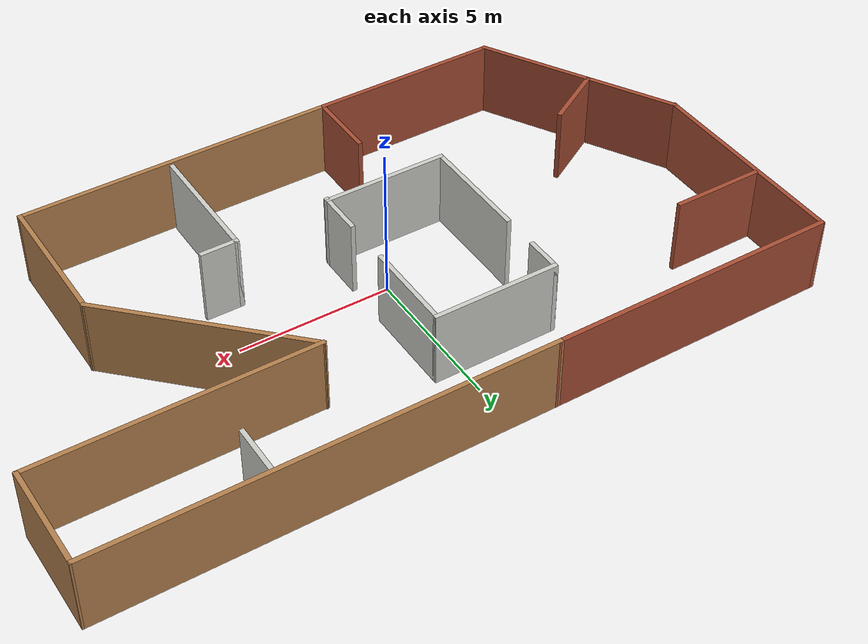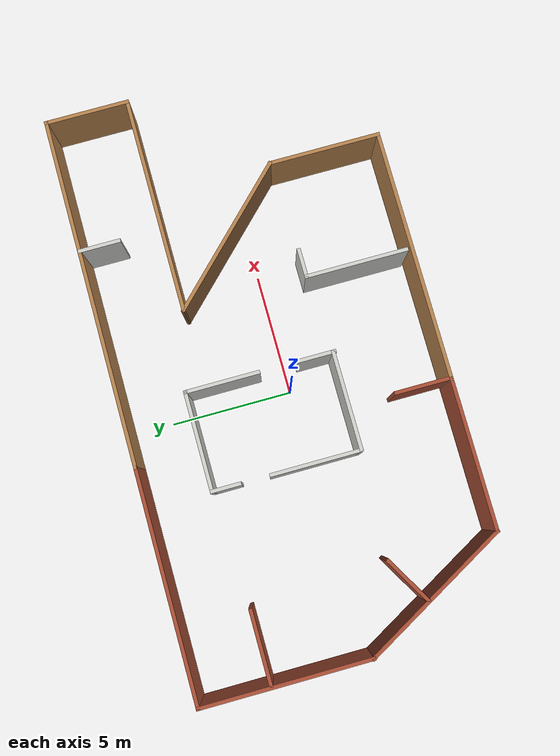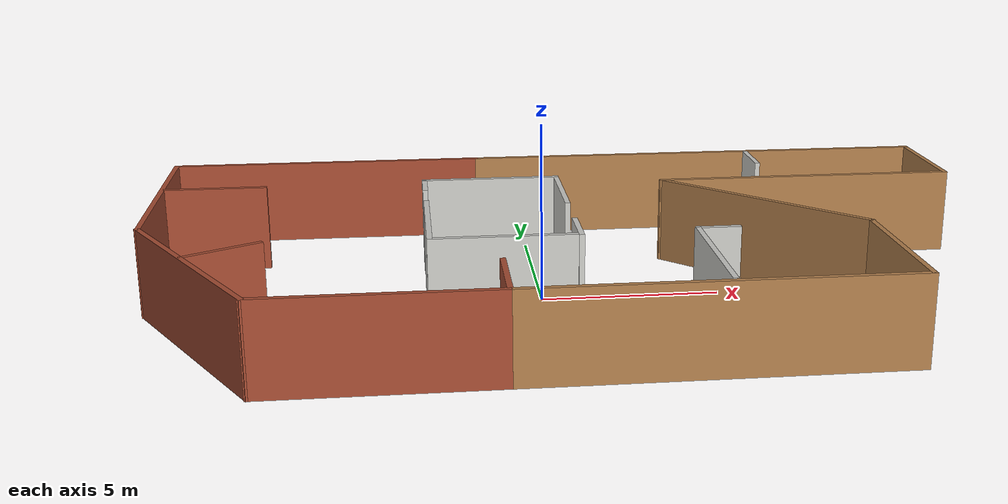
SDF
<?xml version='1.0'?>
<sdf version='1.6'>
  <model name='new_building'>
    <pose frame=''>1.00211 0.267219 0 0 -0 0</pose>
    <link name='Wall_11'>
      <collision name='Wall_11_Collision'>
        <geometry>
          <box>
            <size>3.75 0.15 2.5</size>
          </box>
        </geometry>
        <pose frame=''>0 0 1.25 0 -0 0</pose>
      </collision>
      <visual name='Wall_11_Visual'>
        <pose frame=''>0 0 1.25 0 -0 0</pose>
        <geometry>
          <box>
            <size>3.75 0.15 2.5</size>
          </box>
        </geometry>
        <material>
          <script>
            <uri>file://media/materials/scripts/gazebo.material</uri>
            <name>Gazebo/CeilingTiled</name>
          </script>
          <ambient>0.996078 0.47451 0.0196078 1</ambient>
        </material>
        <meta>
          <layer>0</layer>
        </meta>
      </visual>
      <pose frame=''>-4.14163 -0.403047 0 0 -0 1.5708</pose>
    </link>
    <link name='Wall_14'>
      <collision name='Wall_14_Collision'>
        <geometry>
          <box>
            <size>3.5 0.15 2.5</size>
          </box>
        </geometry>
        <pose frame=''>0 0 1.25 0 -0 0</pose>
      </collision>
      <visual name='Wall_14_Visual'>
        <pose frame=''>0 0 1.25 0 -0 0</pose>
        <geometry>
          <box>
            <size>3.5 0.15 2.5</size>
          </box>
        </geometry>
        <material>
          <script>
            <uri>file://media/materials/scripts/gazebo.material</uri>
            <name>Gazebo/Wood</name>
          </script>
          <ambient>0 0 1 1</ambient>
        </material>
        <meta>
          <layer>0</layer>
        </meta>
      </visual>
      <pose frame=''>11.8417 4.67007 0 0 -0 -1.5708</pose>
    </link>
    <link name='Wall_15'>
      <collision name='Wall_15_Collision'>
        <geometry>
          <box>
            <size>9 0.15 2.5</size>
          </box>
        </geometry>
        <pose frame=''>0 0 1.25 0 -0 0</pose>
      </collision>
      <visual name='Wall_15_Visual'>
        <pose frame=''>0 0 1.25 0 -0 0</pose>
        <geometry>
          <box>
            <size>9 0.15 2.5</size>
          </box>
        </geometry>
        <material>
          <script>
            <uri>file://media/materials/scripts/gazebo.material</uri>
            <name>Gazebo/Wood</name>
          </script>
          <ambient>0 0 1 1</ambient>
        </material>
        <meta>
          <layer>0</layer>
        </meta>
      </visual>
      <pose frame=''>7.41668 2.99507 0 0 -0 3.14159</pose>
    </link>
    <link name='Wall_16'>
      <collision name='Wall_16_Collision'>
        <geometry>
          <box>
            <size>7 0.15 2.5</size>
          </box>
        </geometry>
        <pose frame=''>0 0 1.25 0 -0 0</pose>
      </collision>
      <visual name='Wall_16_Visual'>
        <pose frame=''>0 0 1.25 0 -0 0</pose>
        <geometry>
          <box>
            <size>7 0.15 2.5</size>
          </box>
        </geometry>
        <material>
          <script>
            <uri>file://media/materials/scripts/gazebo.material</uri>
            <name>Gazebo/Wood</name>
          </script>
          <ambient>0.435294 0.796078 0.67451 1</ambient>
        </material>
        <meta>
          <layer>0</layer>
        </meta>
      </visual>
      <pose frame=''>5.41352 0.573235 0 0 -0 -0.785398</pose>
    </link>
    <link name='Wall_17'>
      <collision name='Wall_17_Collision'>
        <geometry>
          <box>
            <size>4.64151 0.15 2.5</size>
          </box>
        </geometry>
        <pose frame=''>0 0 1.25 0 -0 0</pose>
      </collision>
      <visual name='Wall_17_Visual'>
        <pose frame=''>0 0 1.25 0 -0 0</pose>
        <geometry>
          <box>
            <size>4.64151 0.15 2.5</size>
          </box>
        </geometry>
        <material>
          <script>
            <uri>file://media/materials/scripts/gazebo.material</uri>
            <name>Gazebo/Wood</name>
          </script>
          <ambient>0.435294 0.796078 0.67451 1</ambient>
        </material>
        <meta>
          <layer>0</layer>
        </meta>
      </visual>
      <pose frame=''>7.83536 -4.09436 0 0 -0 -1.5708</pose>
    </link>
    <link name='Wall_19'>
      <collision name='Wall_19_Collision'>
        <geometry>
          <box>
            <size>6.87293 0.15 2.5</size>
          </box>
        </geometry>
        <pose frame=''>0 0 1.25 0 -0 0</pose>
      </collision>
      <visual name='Wall_19_Visual'>
        <pose frame=''>0 0 1.25 0 -0 0</pose>
        <geometry>
          <box>
            <size>6.87293 0.15 2.5</size>
          </box>
        </geometry>
        <material>
          <script>
            <uri>file://media/materials/scripts/gazebo.material</uri>
            <name>Gazebo/Bricks</name>
          </script>
          <ambient>0.921569 0.807843 0.615686 1</ambient>
        </material>
        <meta>
          <layer>0</layer>
        </meta>
      </visual>
      <pose frame=''>-10.1646 -3.41148 0 0 -0 2.08387</pose>
    </link>
    <link name='Wall_20'>
      <collision name='Wall_20_Collision'>
        <geometry>
          <box>
            <size>7 0.15 2.5</size>
          </box>
        </geometry>
        <pose frame=''>0 0 1.25 0 -0 0</pose>
      </collision>
      <visual name='Wall_20_Visual'>
        <pose frame=''>0 0 1.25 0 -0 0</pose>
        <geometry>
          <box>
            <size>7 0.15 2.5</size>
          </box>
        </geometry>
        <material>
          <script>
            <uri>file://media/materials/scripts/gazebo.material</uri>
            <name>Gazebo/Bricks</name>
          </script>
          <ambient>0.760784 0.662745 0.627451 1</ambient>
        </material>
        <meta>
          <layer>0</layer>
        </meta>
      </visual>
      <pose frame=''>-11.8146 2.94216 0 0 -0 1.5708</pose>
    </link>
    <link name='Wall_21'>
      <collision name='Wall_21_Collision'>
        <geometry>
          <box>
            <size>9.5 0.15 2.5</size>
          </box>
        </geometry>
        <pose frame=''>0 0 1.25 0 -0 0</pose>
      </collision>
      <visual name='Wall_21_Visual'>
        <pose frame=''>0 0 1.25 0 -0 0</pose>
        <geometry>
          <box>
            <size>9.5 0.15 2.5</size>
          </box>
        </geometry>
        <material>
          <script>
            <uri>file://media/materials/scripts/gazebo.material</uri>
            <name>Gazebo/Bricks</name>
          </script>
          <ambient>1 1 1 1</ambient>
        </material>
        <meta>
          <layer>0</layer>
        </meta>
      </visual>
      <pose frame=''>-7.13964 6.36716 0 0 -0 0</pose>
    </link>
    <link name='Wall_23'>
      <collision name='Wall_23_Collision'>
        <geometry>
          <box>
            <size>3 0.15 2.5</size>
          </box>
        </geometry>
        <pose frame=''>0 0 1.25 0 -0 0</pose>
      </collision>
      <visual name='Wall_23_Visual'>
        <pose frame=''>0 0 1.25 0 -0 0</pose>
        <geometry>
          <box>
            <size>3 0.15 2.5</size>
          </box>
        </geometry>
        <material>
          <script>
            <uri>file://media/materials/scripts/gazebo.material</uri>
            <name>Gazebo/Bricks</name>
          </script>
          <ambient>1 1 1 1</ambient>
        </material>
        <meta>
          <layer>0</layer>
        </meta>
      </visual>
      <pose frame=''>-10.291 3.51479 0 0 -0 0</pose>
    </link>
    <link name='Wall_25'>
      <collision name='Wall_25_Collision'>
        <geometry>
          <box>
            <size>2.25 0.15 2.5</size>
          </box>
        </geometry>
        <pose frame=''>0 0 1.25 0 -0 0</pose>
      </collision>
      <visual name='Wall_25_Visual'>
        <pose frame=''>0 0 1.25 0 -0 0</pose>
        <geometry>
          <box>
            <size>2.25 0.15 2.5</size>
          </box>
        </geometry>
        <material>
          <script>
            <uri>file://media/materials/scripts/gazebo.material</uri>
            <name>Gazebo/Bricks</name>
          </script>
          <ambient>1 1 1 1</ambient>
        </material>
        <meta>
          <layer>0</layer>
        </meta>
      </visual>
      <pose frame=''>-2.37608 -5.16665 0 0 -0 1.5708</pose>
    </link>
    <link name='Wall_28'>
      <collision name='Wall_28_Collision'>
        <geometry>
          <box>
            <size>2.25 0.15 2.5</size>
          </box>
        </geometry>
        <pose frame=''>0 0 1.25 0 -0 0</pose>
      </collision>
      <visual name='Wall_28_Visual'>
        <pose frame=''>0 0 1.25 0 -0 0</pose>
        <geometry>
          <box>
            <size>2.25 0.15 2.5</size>
          </box>
        </geometry>
        <material>
          <script>
            <uri>file://media/materials/scripts/gazebo.material</uri>
            <name>Gazebo/Bricks</name>
          </script>
          <ambient>1 1 1 1</ambient>
        </material>
        <meta>
          <layer>0</layer>
        </meta>
      </visual>
      <pose frame=''>-9.39155 -2.54061 0 0 -0 0.523599</pose>
    </link>
    <link name='Wall_3'>
      <collision name='Wall_3_Collision'>
        <geometry>
          <box>
            <size>4.13184 0.15 2.5</size>
          </box>
        </geometry>
        <pose frame=''>0 0 1.25 0 -0 0</pose>
      </collision>
      <visual name='Wall_3_Visual'>
        <pose frame=''>0 0 1.25 0 -0 0</pose>
        <geometry>
          <box>
            <size>4.13184 0.15 2.5</size>
          </box>
        </geometry>
        <material>
          <script>
            <uri>file://media/materials/scripts/gazebo.material</uri>
            <name>Gazebo/CeilingTiled</name>
          </script>
          <ambient>0.996078 0.47451 0.0196078 1</ambient>
        </material>
        <meta>
          <layer>0</layer>
        </meta>
      </visual>
      <pose frame=''>-2.15071 3.76645 0 0 -0 0</pose>
    </link>
    <link name='Wall_30'>
      <collision name='Wall_30_Collision'>
        <geometry>
          <box>
            <size>4.25 0.15 2.5</size>
          </box>
        </geometry>
        <pose frame=''>0 0 1.25 0 -0 0</pose>
      </collision>
      <visual name='Wall_30_Visual'>
        <pose frame=''>0 0 1.25 0 -0 0</pose>
        <geometry>
          <box>
            <size>4.25 0.15 2.5</size>
          </box>
        </geometry>
        <material>
          <script>
            <uri>file://media/materials/scripts/gazebo.material</uri>
            <name>Gazebo/CeilingTiled</name>
          </script>
          <ambient>0.760784 0.662745 0.627451 1</ambient>
        </material>
        <meta>
          <layer>0</layer>
        </meta>
      </visual>
      <pose frame=''>3.00145 -4.05817 0 0 -0 1.5708</pose>
    </link>
    <link name='Wall_31'>
      <collision name='Wall_31_Collision'>
        <geometry>
          <box>
            <size>1.25 0.15 2.5</size>
          </box>
        </geometry>
        <pose frame=''>0 0 1.25 0 -0 0</pose>
      </collision>
      <visual name='Wall_31_Visual'>
        <pose frame=''>0 0 1.25 0 -0 0</pose>
        <geometry>
          <box>
            <size>1.25 0.15 2.5</size>
          </box>
        </geometry>
        <material>
          <script>
            <uri>file://media/materials/scripts/gazebo.material</uri>
            <name>Gazebo/CeilingTiled</name>
          </script>
          <ambient>0.760784 0.662745 0.627451 1</ambient>
        </material>
        <meta>
          <layer>0</layer>
        </meta>
      </visual>
      <pose frame=''>3.55145 -2.00817 0 0 -0 0</pose>
    </link>
    <link name='Wall_33'>
      <collision name='Wall_33_Collision'>
        <geometry>
          <box>
            <size>1.75 0.15 2.5</size>
          </box>
        </geometry>
        <pose frame=''>0 0 1.25 0 -0 0</pose>
      </collision>
      <visual name='Wall_33_Visual'>
        <pose frame=''>0 0 1.25 0 -0 0</pose>
        <geometry>
          <box>
            <size>1.75 0.15 2.5</size>
          </box>
        </geometry>
        <material>
          <script>
            <uri>file://media/materials/scripts/gazebo.material</uri>
            <name>Gazebo/CeilingTiled</name>
          </script>
          <ambient>0 0 1 1</ambient>
        </material>
        <meta>
          <layer>0</layer>
        </meta>
      </visual>
      <pose frame=''>6.37467 5.54918 0 0 -0 -1.5708</pose>
    </link>
    <link name='Wall_37'>
      <collision name='Wall_37_Collision'>
        <geometry>
          <box>
            <size>14.4563 0.15 2.5</size>
          </box>
        </geometry>
        <pose frame=''>0 0 1.25 0 -0 0</pose>
      </collision>
      <visual name='Wall_37_Visual'>
        <pose frame=''>0 0 1.25 0 -0 0</pose>
        <geometry>
          <box>
            <size>14.4563 0.15 2.5</size>
          </box>
        </geometry>
        <material>
          <script>
            <uri>file://media/materials/scripts/gazebo.material</uri>
            <name>Gazebo/Wood</name>
          </script>
          <ambient>0 0 1 1</ambient>
        </material>
        <meta>
          <layer>0</layer>
        </meta>
      </visual>
      <pose frame=''>4.68852 6.35612 0 0 -0 3.14005</pose>
    </link>
    <link name='Wall_39'>
      <collision name='Wall_39_Collision'>
        <geometry>
          <box>
            <size>6.25 0.15 2.5</size>
          </box>
        </geometry>
        <pose frame=''>0 0 1.25 0 -0 0</pose>
      </collision>
      <visual name='Wall_39_Visual'>
        <pose frame=''>0 0 1.25 0 -0 0</pose>
        <geometry>
          <box>
            <size>6.25 0.15 2.5</size>
          </box>
        </geometry>
        <material>
          <script>
            <uri>file://media/materials/scripts/gazebo.material</uri>
            <name>Gazebo/Bricks</name>
          </script>
          <ambient>0.996078 0.47451 0.0196078 1</ambient>
        </material>
        <meta>
          <layer>0</layer>
        </meta>
      </visual>
      <pose frame=''>-5.46464 -6.34012 0 0 -0 0</pose>
    </link>
    <link name='Wall_4'>
      <collision name='Wall_4_Collision'>
        <geometry>
          <box>
            <size>3.0399 0.15 2.5</size>
          </box>
        </geometry>
        <pose frame=''>0 0 1.25 0 -0 0</pose>
      </collision>
      <visual name='Wall_4_Visual'>
        <pose frame=''>0 0 1.25 0 -0 0</pose>
        <geometry>
          <box>
            <size>3.0399 0.15 2.5</size>
          </box>
        </geometry>
        <material>
          <script>
            <uri>file://media/materials/scripts/gazebo.material</uri>
            <name>Gazebo/CeilingTiled</name>
          </script>
          <ambient>0.996078 0.47451 0.0196078 1</ambient>
        </material>
        <meta>
          <layer>0</layer>
        </meta>
      </visual>
      <pose frame=''>-0.159795 2.27498 0 0 -0 -1.5708</pose>
    </link>
    <link name='Wall_41'>
      <collision name='Wall_41_Collision'>
        <geometry>
          <box>
            <size>10.4 0.15 2.5</size>
          </box>
        </geometry>
        <pose frame=''>0 0 1.25 0 -0 0</pose>
      </collision>
      <visual name='Wall_41_Visual'>
        <pose frame=''>0 0 1.25 0 -0 0</pose>
        <geometry>
          <box>
            <size>10.4 0.15 2.5</size>
          </box>
        </geometry>
        <material>
          <script>
            <uri>file://media/materials/scripts/gazebo.material</uri>
            <name>Gazebo/Wood</name>
          </script>
          <ambient>0.435294 0.796078 0.67451 1</ambient>
        </material>
        <meta>
          <layer>0</layer>
        </meta>
      </visual>
      <pose frame=''>2.71036 -6.34012 0 0 -0 3.14159</pose>
    </link>
    <link name='Wall_6'>
      <collision name='Wall_6_Collision'>
        <geometry>
          <box>
            <size>4.13184 0.15 2.5</size>
          </box>
        </geometry>
        <pose frame=''>0 0 1.25 0 -0 0</pose>
      </collision>
      <visual name='Wall_6_Visual'>
        <pose frame=''>0 0 1.25 0 -0 0</pose>
        <geometry>
          <box>
            <size>4.13184 0.15 2.5</size>
          </box>
        </geometry>
        <material>
          <script>
            <uri>file://media/materials/scripts/gazebo.material</uri>
            <name>Gazebo/CeilingTiled</name>
          </script>
          <ambient>0.996078 0.47451 0.0196078 1</ambient>
        </material>
        <meta>
          <layer>0</layer>
        </meta>
      </visual>
      <pose frame=''>-2.15071 -2.20305 0 0 -0 0</pose>
    </link>
    <link name='Wall_7'>
      <collision name='Wall_7_Collision'>
        <geometry>
          <box>
            <size>1.5796 0.15 2.5</size>
          </box>
        </geometry>
        <pose frame=''>0 0 1.25 0 -0 0</pose>
      </collision>
      <visual name='Wall_7_Visual'>
        <pose frame=''>0 0 1.25 0 -0 0</pose>
        <geometry>
          <box>
            <size>1.5796 0.15 2.5</size>
          </box>
        </geometry>
        <material>
          <script>
            <uri>file://media/materials/scripts/gazebo.material</uri>
            <name>Gazebo/CeilingTiled</name>
          </script>
          <ambient>0.996078 0.47451 0.0196078 1</ambient>
        </material>
        <meta>
          <layer>0</layer>
        </meta>
      </visual>
      <pose frame=''>-0.159795 -1.53477 0 0 -0 1.5708</pose>
    </link>
    <link name='Wall_9'>
      <collision name='Wall_9_Collision'>
        <geometry>
          <box>
            <size>1.25 0.15 2.5</size>
          </box>
        </geometry>
        <pose frame=''>0 0 1.25 0 -0 0</pose>
      </collision>
      <visual name='Wall_9_Visual'>
        <pose frame=''>0 0 1.25 0 -0 0</pose>
        <geometry>
          <box>
            <size>1.25 0.15 2.5</size>
          </box>
        </geometry>
        <material>
          <script>
            <uri>file://media/materials/scripts/gazebo.material</uri>
            <name>Gazebo/CeilingTiled</name>
          </script>
          <ambient>0.996078 0.47451 0.0196078 1</ambient>
        </material>
        <meta>
          <layer>0</layer>
        </meta>
      </visual>
      <pose frame=''>-4.14163 3.21645 0 0 -0 -1.5708</pose>
    </link>
    <static>1</static>
  </model>
</sdf>
